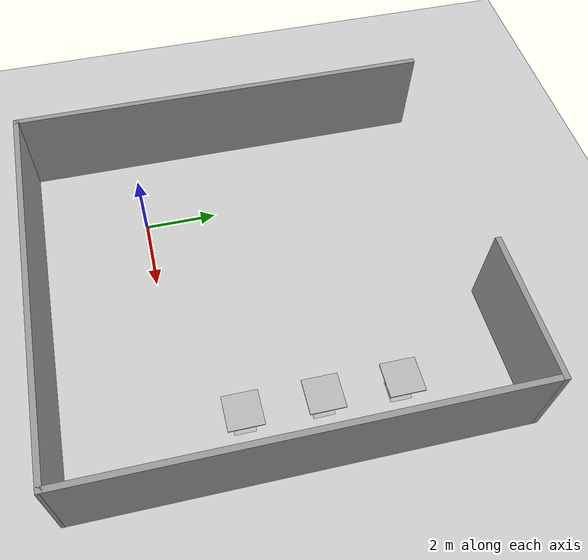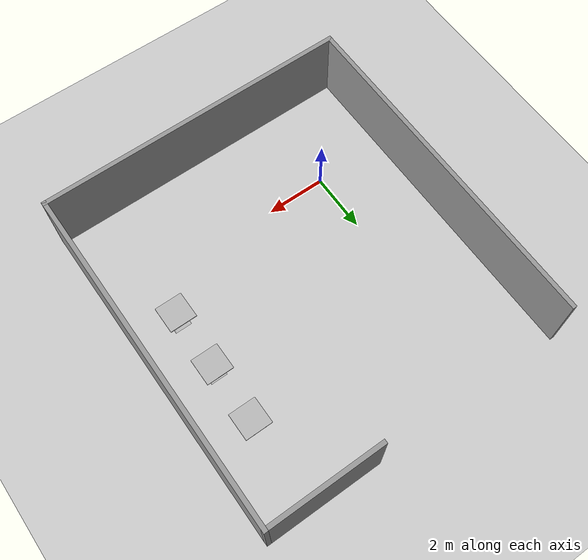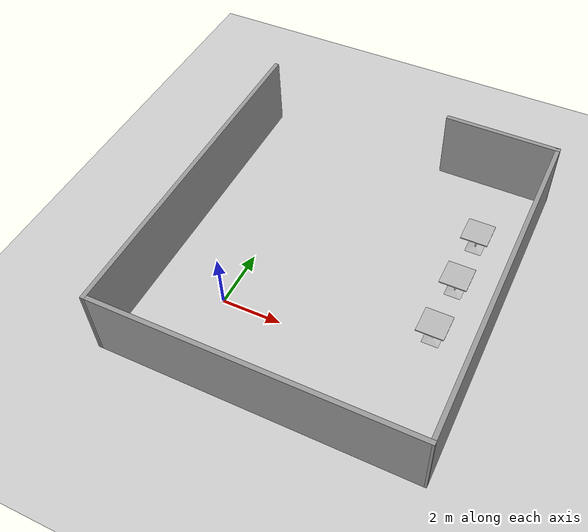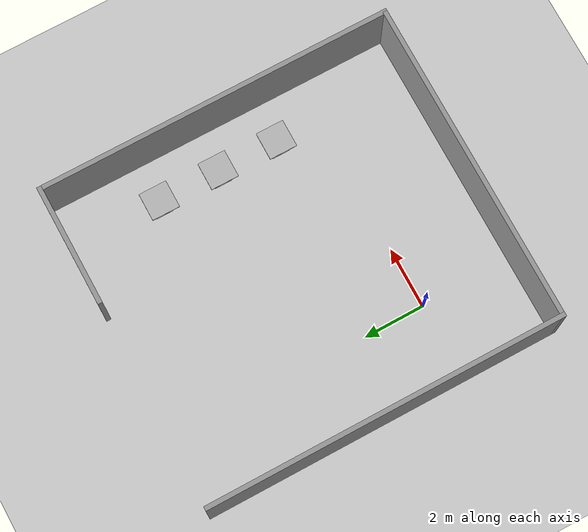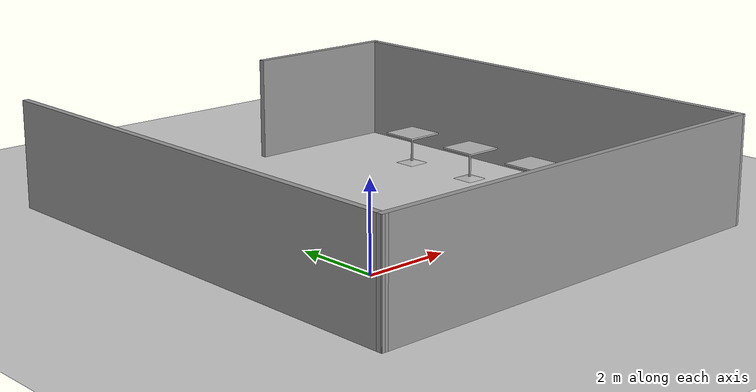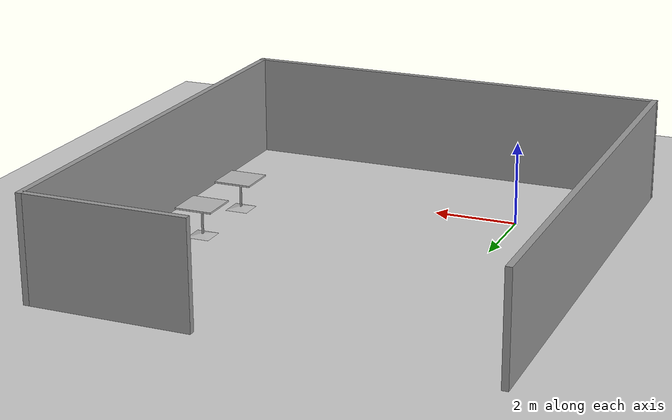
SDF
<sdf version="1.7">
 <world name="default">
  <light name="sun" type="directional">
   <pose>0 0 10 0 -0 0</pose>
   <diffuse>0.8 0.8 0.8 1</diffuse>
   <specular>0.2 0.2 0.2 1</specular>
   <attenuation>
    <range>1000</range>
    <constant>0.9</constant>
    <linear>0.01</linear>
    <quadratic>0.001</quadratic>
   </attenuation>
   <direction>-0.5 0.1 -0.9</direction>
   <spot><inner_angle>0</inner_angle><outer_angle>0</outer_angle><falloff>0</falloff></spot>
  </light>
  <model name="ground_plane">
   <static>1</static>
   <link name="link">
    <collision name="collision">
     <geometry><plane><normal>0 0 1</normal><size>100 100</size></plane></geometry>
     <surface><friction><ode><mu>100</mu><mu2>50</mu2></ode></friction></surface>
    </collision>
    <visual name="visual">
     <cast_shadows>0</cast_shadows>
     <geometry><plane><normal>0 0 1</normal><size>100 100</size></plane></geometry>
     <material>
      <script><uri>file://media/materials/scripts/gazebo.material</uri><name>Gazebo/Grey</name></script>
     </material>
    </visual>
   </link>
  </model>
  <gravity>0 0 -9.8</gravity>
  <magnetic_field>6e-06 2.3e-05 -4.2e-05</magnetic_field>
  <atmosphere type="adiabatic"/>
  <physics type="ode">
   <max_step_size>0.001</max_step_size>
   <real_time_factor>1</real_time_factor>
   <real_time_update_rate>1000</real_time_update_rate>
  </physics>
  <scene><ambient>0.4 0.4 0.4 1</ambient><background>0.7 0.7 0.7 1</background><shadows>1</shadows></scene>
  <audio><device>default</device></audio>
  <spherical_coordinates>
   <surface_model>EARTH_WGS84</surface_model>
   <latitude_deg>0</latitude_deg>
   <longitude_deg>0</longitude_deg>
   <elevation>0</elevation>
   <heading_deg>0</heading_deg>
  </spherical_coordinates>
  <model name="Untitled3">
   <pose>2.75 2.75769 0 0 -0 0</pose>
   <link name="Wall_0">
    <collision name="Wall_0_Collision">
     <geometry><box><size>10.6501 0.15 2.5</size></box></geometry>
     <pose>0 0 1.25 0 -0 0</pose>
    </collision>
    <visual name="Wall_0_Visual">
     <pose>0 0 1.25 0 -0 0</pose>
     <geometry><box><size>10.6501 0.15 2.5</size></box></geometry>
     <material>
      <script><uri>file://media/materials/scripts/gazebo.material</uri><name>Gazebo/Grey</name></script>
      <ambient>1 1 1 1</ambient>
     </material>
     <meta><layer>0</layer></meta>
    </visual>
    <pose>0 -5.76507 0 0 -0 0.001405</pose>
   </link>
   <link name="Wall_2">
    <collision name="Wall_2_Collision">
     <geometry><box><size>11.695 0.15 2.5</size></box></geometry>
     <pose>0 0 1.25 0 -0 0</pose>
    </collision>
    <visual name="Wall_2_Visual">
     <pose>0 0 1.25 0 -0 0</pose>
     <geometry><box><size>11.695 0.15 2.5</size></box></geometry>
     <material>
      <script><uri>file://media/materials/scripts/gazebo.material</uri><name>Gazebo/Grey</name></script>
      <ambient>1 1 1 1</ambient>
     </material>
     <meta><layer>0</layer></meta>
    </visual>
    <pose>-5.25 5.3e-05 0 0 -0 1.5708</pose>
   </link>
   <link name="Wall_4">
    <collision name="Wall_4_Collision">
     <geometry><box><size>11.65 0.15 2.5</size></box></geometry>
     <pose>0 0 1.25 0 -0 0</pose>
    </collision>
    <visual name="Wall_4_Visual">
     <pose>0 0 1.25 0 -0 0</pose>
     <geometry><box><size>11.65 0.15 2.5</size></box></geometry>
     <material>
      <script><uri>file://media/materials/scripts/gazebo.material</uri><name>Gazebo/Grey</name></script>
      <ambient>1 1 1 1</ambient>
     </material>
     <meta><layer>0</layer></meta>
    </visual>
    <pose>5.25 -0.007693 0 0 -0 1.5708</pose>
   </link>
   <link name="Wall_5">
    <collision name="Wall_5_Collision">
     <geometry><box><size>3.95 0.15 2.5</size></box></geometry>
     <pose>0 0 1.25 0 -0 0</pose>
    </collision>
    <visual name="Wall_5_Visual">
     <pose>0 0 1.25 0 -0 0</pose>
     <geometry><box><size>3.95 0.15 2.5</size></box></geometry>
     <material>
      <script><uri>file://media/materials/scripts/gazebo.material</uri><name>Gazebo/Grey</name></script>
      <ambient>1 1 1 1</ambient>
     </material>
     <meta><layer>0</layer></meta>
    </visual>
    <pose>3.35 5.74231 0 0 -0 3.14159</pose>
   </link>
   <static>1</static>
  </model>
  <model name="cafe_table">
   <static>1</static>
   <link name="link">
    <collision name="surface">
     <pose>0 0 0.755 0 -0 0</pose>
     <geometry><box><size>0.913 0.913 0.04</size></box></geometry>
    </collision>
    <collision name="column">
     <pose>0 0 0.37 0 -0 0</pose>
     <geometry><box><size>0.042 0.042 0.74</size></box></geometry>
    </collision>
    <collision name="base">
     <pose>0 0 0.02 0 -0 0</pose>
     <geometry><box><size>0.56 0.56 0.04</size></box></geometry>
    </collision>
    <visual name="visual">
     <geometry><mesh><uri>model://cafe_table/meshes/cafe_table.dae</uri></mesh></geometry>
    </visual>
   </link>
   <pose>6.5 5.5 0 0 -0 0</pose>
  </model>
  <model name="cafe_table_clone">
   <static>1</static>
   <link name="link">
    <collision name="surface">
     <pose>0 0 0.755 0 -0 0</pose>
     <geometry><box><size>0.913 0.913 0.04</size></box></geometry>
    </collision>
    <collision name="column">
     <pose>0 0 0.37 0 -0 0</pose>
     <geometry><box><size>0.042 0.042 0.74</size></box></geometry>
    </collision>
    <collision name="base">
     <pose>0 0 0.02 0 -0 0</pose>
     <geometry><box><size>0.56 0.56 0.04</size></box></geometry>
    </collision>
    <visual name="visual">
     <geometry><mesh><uri>model://cafe_table/meshes/cafe_table.dae</uri></mesh></geometry>
    </visual>
   </link>
   <pose>6.5 3.5 0 0 -0 0</pose>
  </model>
  <model name="cafe_table_clone_clone">
   <static>1</static>
   <link name="link">
    <collision name="surface">
     <pose>0 0 0.755 0 -0 0</pose>
     <geometry><box><size>0.913 0.913 0.04</size></box></geometry>
    </collision>
    <collision name="column">
     <pose>0 0 0.37 0 -0 0</pose>
     <geometry><box><size>0.042 0.042 0.74</size></box></geometry>
    </collision>
    <collision name="base">
     <pose>0 0 0.02 0 -0 0</pose>
     <geometry><box><size>0.56 0.56 0.04</size></box></geometry>
    </collision>
    <visual name="visual">
     <geometry><mesh><uri>model://cafe_table/meshes/cafe_table.dae</uri></mesh></geometry>
    </visual>
   </link>
   <pose>6.5 1.5 0 0 -0 0</pose>
  </model>
 </world>
</sdf>
